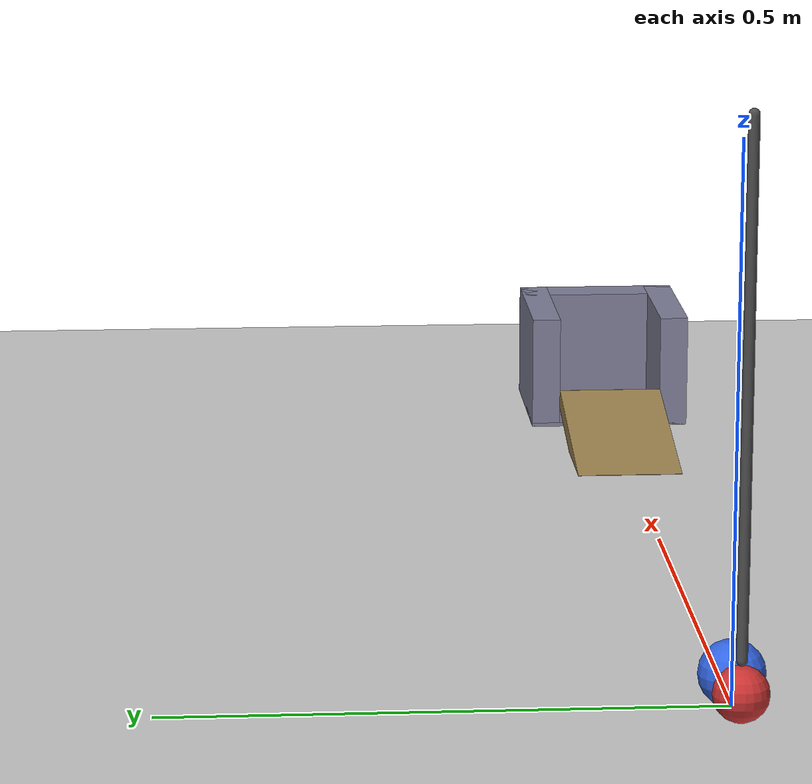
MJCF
<mujoco model="pendulum_ball_cup">
  <option timestep="0.002"/>
  <worldbody>
    <light name="sun" pos="0.5 -1 2" dir="0 0.5 -1" directional="true"/>
    <geom name="floor" type="plane" size="3 3 0.1" rgba="0.8 0.8 0.8 1"/>

    <!-- Pendulum: pivot 0.5 m above the bob centre; bob centre at ball height (0.03) at the bottom of the swing, 0.5 mm short of touching the ball -->
    <body name="pendulum" pos="-0.0555 0 0.53">
      <joint name="pendulum_hinge" type="hinge" axis="0 1 0"/>
      <geom name="pendulum_rod" type="capsule" fromto="0 0 0 0 0 -0.47" size="0.005" mass="0.02" contype="2" conaffinity="2" rgba="0.3 0.3 0.3 1"/>
      <geom name="pendulum_bob" type="sphere" pos="0 0 -0.5" size="0.025" mass="1" contype="2" conaffinity="2" rgba="0.8 0.2 0.2 1"/>
    </body>

    <!-- Ball resting on the floor at x = 0 -->
    <body name="ball" pos="0 0 0.03">
      <freejoint name="ball_free"/>
      <geom name="ball" type="sphere" size="0.03" mass="0.05" condim="6" friction="1 0.005 0.0003" contype="1" conaffinity="3" rgba="0.2 0.4 0.9 1"/>
    </body>

    <!-- Cup centred at x = 1 m: ramp, low front lip, tall thick side/back walls, thin base -->
    <body name="cup" pos="1 0 0">
      <geom name="cup_ramp" type="box" pos="-0.162 0 0.0102" euler="0 -12 0" size="0.1 0.055 0.01" rgba="0.6 0.5 0.3 1"/>
      <geom name="cup_base" type="box" pos="0.015 0 0.002" size="0.08 0.085 0.002" rgba="0.5 0.5 0.6 1"/>
      <geom name="cup_front" type="box" pos="-0.06 0 0.019" size="0.005 0.055 0.019" rgba="0.5 0.5 0.6 1"/>
      <geom name="cup_back" type="box" pos="0.075 0 0.06" size="0.02 0.085 0.06" rgba="0.5 0.5 0.6 1"/>
      <geom name="cup_left" type="box" pos="0.015 0.07 0.06" size="0.08 0.015 0.06" rgba="0.5 0.5 0.6 1"/>
      <geom name="cup_right" type="box" pos="0.015 -0.07 0.06" size="0.08 0.015 0.06" rgba="0.5 0.5 0.6 1"/>
    </body>
  </worldbody>

  <keyframe>
    <key name="start" qpos="0.6435 0 0 0.03 1 0 0 0"/>
  </keyframe>
</mujoco>
